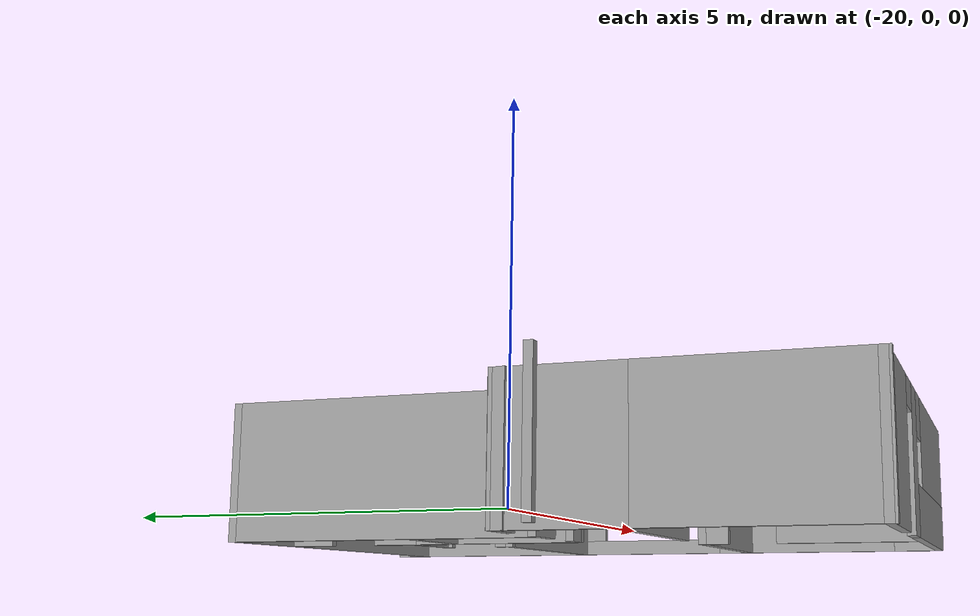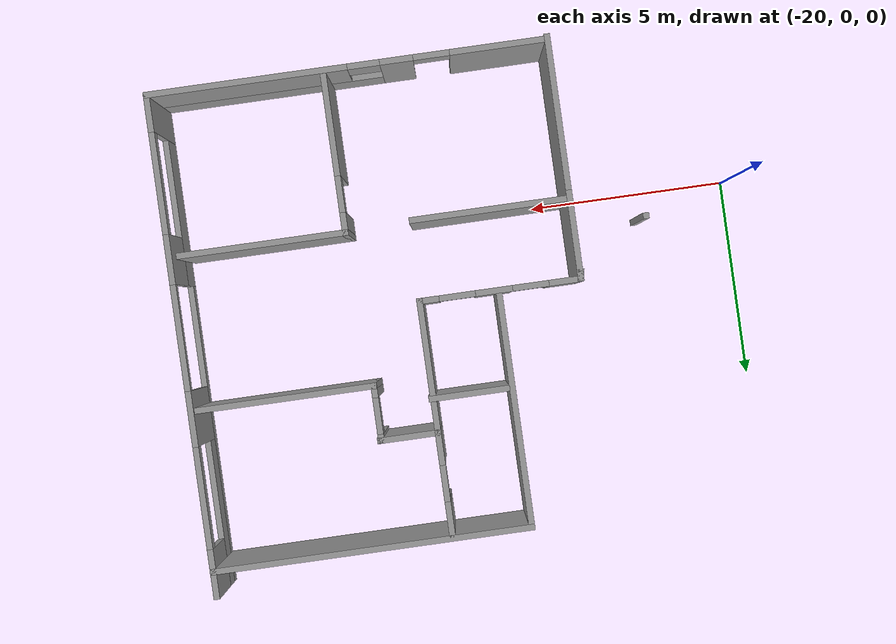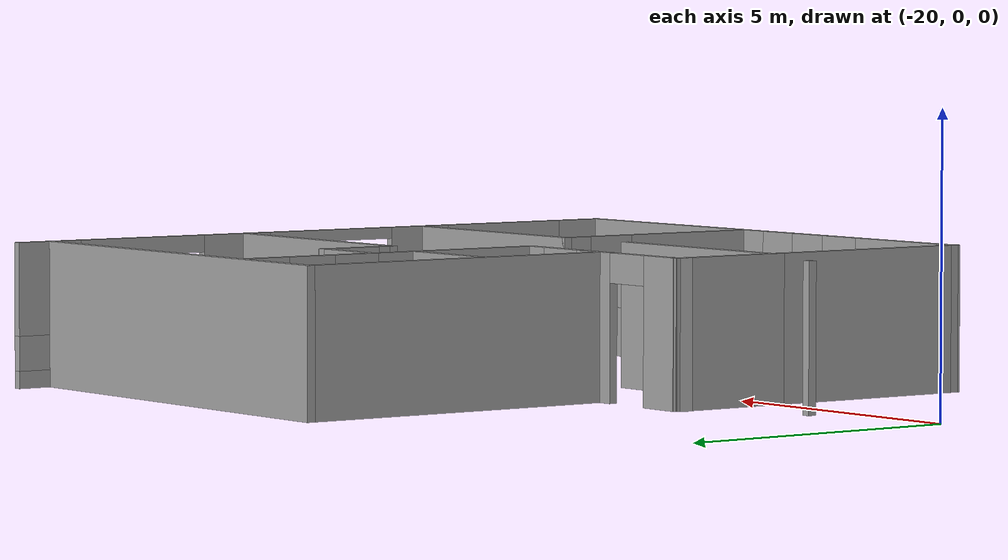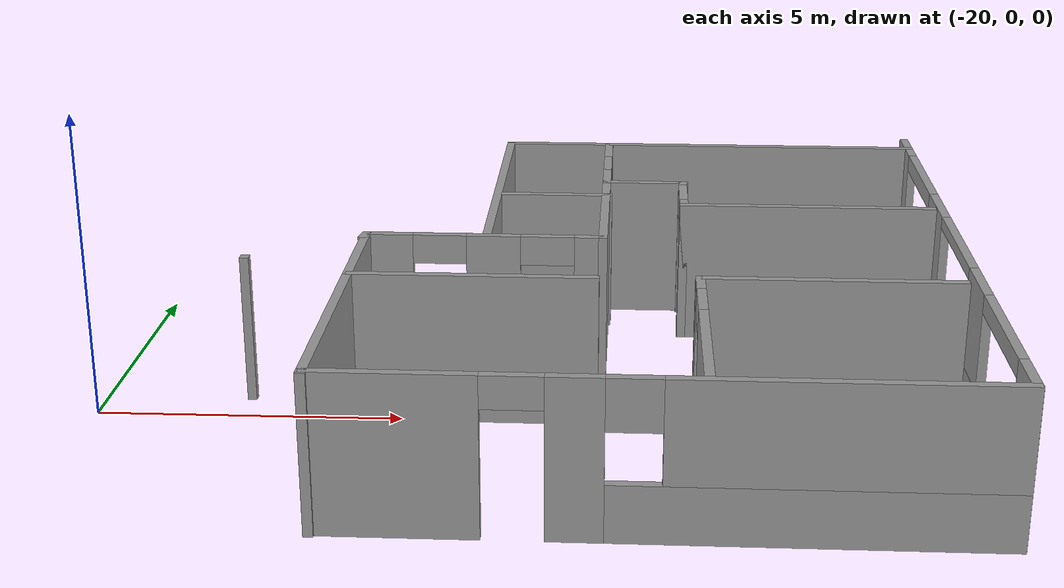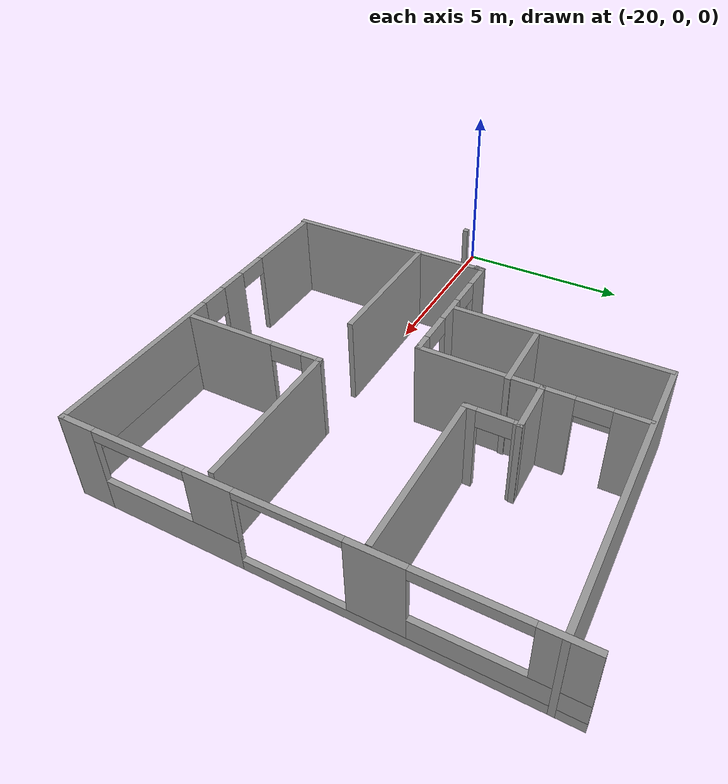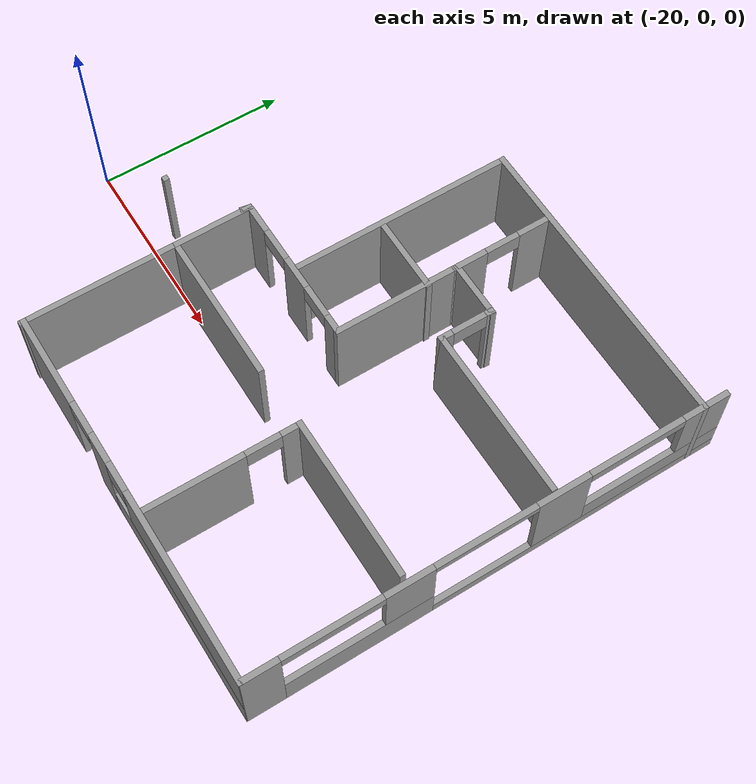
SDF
<?xml version='1.0'?>
<sdf version='1.6'>
  <model name='appartment'>
    <pose frame=''>-11.7502 2.24958 0 0 -0 0</pose>
    <link name='Wall_101'>
      <collision name='Wall_101_Collision'>
        <geometry>
          <box>
            <size>2 0.15 2.5</size>
          </box>
        </geometry>
        <pose frame=''>0 0 1.25 0 -0 0</pose>
      </collision>
      <visual name='Wall_101_Visual'>
        <pose frame=''>0 0 1.25 0 -0 0</pose>
        <geometry>
          <box>
            <size>2 0.15 2.5</size>
          </box>
        </geometry>
        <material>
          <script>
            <uri>file://media/materials/scripts/gazebo.material</uri>
            <name>Gazebo/Grey</name>
          </script>
          <ambient>1 1 1 1</ambient>
        </material>
        <meta>
          <layer>0</layer>
        </meta>
      </visual>
      <pose frame=''>-0.959711 2.15887 0 0 -0 0</pose>
    </link>
    <link name='Wall_103'>
      <collision name='Wall_103_Collision'>
        <geometry>
          <box>
            <size>2.25 0.15 2.5</size>
          </box>
        </geometry>
        <pose frame=''>0 0 1.25 0 -0 0</pose>
      </collision>
      <visual name='Wall_103_Visual'>
        <pose frame=''>0 0 1.25 0 -0 0</pose>
        <geometry>
          <box>
            <size>2.25 0.15 2.5</size>
          </box>
        </geometry>
        <material>
          <script>
            <uri>file://media/materials/scripts/gazebo.material</uri>
            <name>Gazebo/Grey</name>
          </script>
          <ambient>1 1 1 1</ambient>
        </material>
        <meta>
          <layer>0</layer>
        </meta>
      </visual>
      <pose frame=''>-4.05534 -1.30677 0 0 -0 1.5708</pose>
    </link>
    <link name='Wall_104'>
      <collision name='Wall_104_Collision'>
        <geometry>
          <box>
            <size>0.305575 0.15 2.5</size>
          </box>
        </geometry>
        <pose frame=''>0 0 1.25 0 -0 0</pose>
      </collision>
      <visual name='Wall_104_Visual'>
        <pose frame=''>0 0 1.25 0 -0 0</pose>
        <geometry>
          <box>
            <size>0.305575 0.15 2.5</size>
          </box>
        </geometry>
        <material>
          <script>
            <uri>file://media/materials/scripts/gazebo.material</uri>
            <name>Gazebo/Grey</name>
          </script>
          <ambient>1 1 1 1</ambient>
        </material>
        <meta>
          <layer>0</layer>
        </meta>
      </visual>
      <pose frame=''>-4.06828 -0.333478 0 0 0 -1.73794</pose>
    </link>
    <link name='Wall_55'>
      <collision name='Wall_55_Collision'>
        <geometry>
          <box>
            <size>0.15 0.15 2.5</size>
          </box>
        </geometry>
        <pose frame=''>0 0 1.25 0 -0 0</pose>
      </collision>
      <visual name='Wall_55_Visual'>
        <pose frame=''>0 0 1.25 0 -0 0</pose>
        <geometry>
          <box>
            <size>0.15 0.15 2.5</size>
          </box>
        </geometry>
        <material>
          <script>
            <uri>file://media/materials/scripts/gazebo.material</uri>
            <name>Gazebo/Grey</name>
          </script>
          <ambient>1 1 1 1</ambient>
        </material>
        <meta>
          <layer>0</layer>
        </meta>
      </visual>
      <pose frame=''>-5.84363 -1.5444 0 0 -0 0</pose>
    </link>
    <link name='Wall_61'>
      <pose frame=''>1.4899 -4.08314 0 0 0 -1.5708</pose>
      <visual name='Wall_61_Visual_0'>
        <pose frame=''>-1.71394 0 1.25 0 -0 0</pose>
        <geometry>
          <box>
            <size>0.572121 0.15 2.5</size>
          </box>
        </geometry>
        <material>
          <script>
            <uri>file://media/materials/scripts/gazebo.material</uri>
            <name>Gazebo/Grey</name>
          </script>
          <ambient>1 1 1 1</ambient>
        </material>
        <meta>
          <layer>0</layer>
        </meta>
      </visual>
      <collision name='Wall_61_Collision_0'>
        <geometry>
          <box>
            <size>0.572121 0.15 2.5</size>
          </box>
        </geometry>
        <pose frame=''>-1.71394 0 1.25 0 -0 0</pose>
      </collision>
      <visual name='Wall_61_Visual_1'>
        <pose frame=''>0.736061 0 1.25 0 -0 0</pose>
        <geometry>
          <box>
            <size>2.52788 0.15 2.5</size>
          </box>
        </geometry>
        <material>
          <script>
            <uri>file://media/materials/scripts/gazebo.material</uri>
            <name>Gazebo/Grey</name>
          </script>
          <ambient>1 1 1 1</ambient>
        </material>
        <meta>
          <layer>0</layer>
        </meta>
      </visual>
      <collision name='Wall_61_Collision_1'>
        <geometry>
          <box>
            <size>2.52788 0.15 2.5</size>
          </box>
        </geometry>
        <pose frame=''>0.736061 0 1.25 0 -0 0</pose>
      </collision>
      <visual name='Wall_61_Visual_2'>
        <pose frame=''>-0.977879 0 2.25 0 -0 0</pose>
        <geometry>
          <box>
            <size>0.9 0.15 0.5</size>
          </box>
        </geometry>
        <material>
          <script>
            <uri>file://media/materials/scripts/gazebo.material</uri>
            <name>Gazebo/Grey</name>
          </script>
          <ambient>1 1 1 1</ambient>
        </material>
        <meta>
          <layer>0</layer>
        </meta>
      </visual>
      <collision name='Wall_61_Collision_2'>
        <geometry>
          <box>
            <size>0.9 0.15 0.5</size>
          </box>
        </geometry>
        <pose frame=''>-0.977879 0 2.25 0 -0 0</pose>
      </collision>
    </link>
    <link name='Wall_63'>
      <pose frame=''>5.84227 0.031774 0 0 -0 1.5708</pose>
      <visual name='Wall_63_Visual_0'>
        <pose frame=''>-5.76203 0 1.25 0 -0 0</pose>
        <geometry>
          <box>
            <size>0.975943 0.15 2.5</size>
          </box>
        </geometry>
        <material>
          <script>
            <uri>file://media/materials/scripts/gazebo.material</uri>
            <name>Gazebo/Grey</name>
          </script>
          <ambient>1 1 1 1</ambient>
        </material>
        <meta>
          <layer>0</layer>
        </meta>
      </visual>
      <collision name='Wall_63_Collision_0'>
        <geometry>
          <box>
            <size>0.975943 0.15 2.5</size>
          </box>
        </geometry>
        <pose frame=''>-5.76203 0 1.25 0 -0 0</pose>
      </collision>
      <visual name='Wall_63_Visual_1'>
        <pose frame=''>-3.39353 0 0.45 0 -0 0</pose>
        <geometry>
          <box>
            <size>3.76105 0.15 0.9</size>
          </box>
        </geometry>
        <material>
          <script>
            <uri>file://media/materials/scripts/gazebo.material</uri>
            <name>Gazebo/Grey</name>
          </script>
          <ambient>1 1 1 1</ambient>
        </material>
        <meta>
          <layer>0</layer>
        </meta>
      </visual>
      <collision name='Wall_63_Collision_1'>
        <geometry>
          <box>
            <size>3.76105 0.15 0.9</size>
          </box>
        </geometry>
        <pose frame=''>-3.39353 0 0.45 0 -0 0</pose>
      </collision>
      <visual name='Wall_63_Visual_2'>
        <pose frame=''>2.3685 0 0.15 0 -0 0</pose>
        <geometry>
          <box>
            <size>7.763 0.15 0.3</size>
          </box>
        </geometry>
        <material>
          <script>
            <uri>file://media/materials/scripts/gazebo.material</uri>
            <name>Gazebo/Grey</name>
          </script>
          <ambient>1 1 1 1</ambient>
        </material>
        <meta>
          <layer>0</layer>
        </meta>
      </visual>
      <collision name='Wall_63_Collision_2'>
        <geometry>
          <box>
            <size>7.763 0.15 0.3</size>
          </box>
        </geometry>
        <pose frame=''>2.3685 0 0.15 0 -0 0</pose>
      </collision>
      <visual name='Wall_63_Visual_3'>
        <pose frame=''>1.80513 0 1.4 0 -0 0</pose>
        <geometry>
          <box>
            <size>1.38062 0.15 2.2</size>
          </box>
        </geometry>
        <material>
          <script>
            <uri>file://media/materials/scripts/gazebo.material</uri>
            <name>Gazebo/Grey</name>
          </script>
          <ambient>1 1 1 1</ambient>
        </material>
        <meta>
          <layer>0</layer>
        </meta>
      </visual>
      <collision name='Wall_63_Collision_3'>
        <geometry>
          <box>
            <size>1.38062 0.15 2.2</size>
          </box>
        </geometry>
        <pose frame=''>1.80513 0 1.4 0 -0 0</pose>
      </collision>
      <visual name='Wall_63_Visual_4'>
        <pose frame=''>4.37272 0 0.6 0 -0 0</pose>
        <geometry>
          <box>
            <size>3.75456 0.15 0.6</size>
          </box>
        </geometry>
        <material>
          <script>
            <uri>file://media/materials/scripts/gazebo.material</uri>
            <name>Gazebo/Grey</name>
          </script>
          <ambient>1 1 1 1</ambient>
        </material>
        <meta>
          <layer>0</layer>
        </meta>
      </visual>
      <collision name='Wall_63_Collision_4'>
        <geometry>
          <box>
            <size>3.75456 0.15 0.6</size>
          </box>
        </geometry>
        <pose frame=''>4.37272 0 0.6 0 -0 0</pose>
      </collision>
      <visual name='Wall_63_Visual_5'>
        <pose frame=''>-2.13353 0 1.7 0 -0 0</pose>
        <geometry>
          <box>
            <size>1.24105 0.15 1.6</size>
          </box>
        </geometry>
        <material>
          <script>
            <uri>file://media/materials/scripts/gazebo.material</uri>
            <name>Gazebo/Grey</name>
          </script>
          <ambient>1 1 1 1</ambient>
        </material>
        <meta>
          <layer>0</layer>
        </meta>
      </visual>
      <collision name='Wall_63_Collision_5'>
        <geometry>
          <box>
            <size>1.24105 0.15 1.6</size>
          </box>
        </geometry>
        <pose frame=''>-2.13353 0 1.7 0 -0 0</pose>
      </collision>
      <visual name='Wall_63_Visual_6'>
        <pose frame=''>-2.13353 0 1.7 0 -0 0</pose>
        <geometry>
          <box>
            <size>1.24105 0.15 1.6</size>
          </box>
        </geometry>
        <material>
          <script>
            <uri>file://media/materials/scripts/gazebo.material</uri>
            <name>Gazebo/Grey</name>
          </script>
          <ambient>1 1 1 1</ambient>
        </material>
        <meta>
          <layer>0</layer>
        </meta>
      </visual>
      <collision name='Wall_63_Collision_6'>
        <geometry>
          <box>
            <size>1.24105 0.15 1.6</size>
          </box>
        </geometry>
        <pose frame=''>-2.13353 0 1.7 0 -0 0</pose>
      </collision>
      <visual name='Wall_63_Visual_7'>
        <pose frame=''>5.63272 0 1.7 0 -0 0</pose>
        <geometry>
          <box>
            <size>1.23456 0.15 1.6</size>
          </box>
        </geometry>
        <material>
          <script>
            <uri>file://media/materials/scripts/gazebo.material</uri>
            <name>Gazebo/Grey</name>
          </script>
          <ambient>1 1 1 1</ambient>
        </material>
        <meta>
          <layer>0</layer>
        </meta>
      </visual>
      <collision name='Wall_63_Collision_7'>
        <geometry>
          <box>
            <size>1.23456 0.15 1.6</size>
          </box>
        </geometry>
        <pose frame=''>5.63272 0 1.7 0 -0 0</pose>
      </collision>
      <visual name='Wall_63_Visual_8'>
        <pose frame=''>-4.01406 0 2.35 0 -0 0</pose>
        <geometry>
          <box>
            <size>2.52 0.15 0.3</size>
          </box>
        </geometry>
        <material>
          <script>
            <uri>file://media/materials/scripts/gazebo.material</uri>
            <name>Gazebo/Grey</name>
          </script>
          <ambient>1 1 1 1</ambient>
        </material>
        <meta>
          <layer>0</layer>
        </meta>
      </visual>
      <collision name='Wall_63_Collision_8'>
        <geometry>
          <box>
            <size>2.52 0.15 0.3</size>
          </box>
        </geometry>
        <pose frame=''>-4.01406 0 2.35 0 -0 0</pose>
      </collision>
      <visual name='Wall_63_Visual_9'>
        <pose frame=''>3.75544 0 2.35 0 -0 0</pose>
        <geometry>
          <box>
            <size>2.52 0.15 0.3</size>
          </box>
        </geometry>
        <material>
          <script>
            <uri>file://media/materials/scripts/gazebo.material</uri>
            <name>Gazebo/Grey</name>
          </script>
          <ambient>1 1 1 1</ambient>
        </material>
        <meta>
          <layer>0</layer>
        </meta>
      </visual>
      <collision name='Wall_63_Collision_9'>
        <geometry>
          <box>
            <size>2.52 0.15 0.3</size>
          </box>
        </geometry>
        <pose frame=''>3.75544 0 2.35 0 -0 0</pose>
      </collision>
      <visual name='Wall_63_Visual_10'>
        <pose frame=''>-0.199096 0 2.4 0 -0 0</pose>
        <geometry>
          <box>
            <size>2.62782 0.15 0.2</size>
          </box>
        </geometry>
        <material>
          <script>
            <uri>file://media/materials/scripts/gazebo.material</uri>
            <name>Gazebo/Grey</name>
          </script>
          <ambient>1 1 1 1</ambient>
        </material>
        <meta>
          <layer>0</layer>
        </meta>
      </visual>
      <collision name='Wall_63_Collision_10'>
        <geometry>
          <box>
            <size>2.62782 0.15 0.2</size>
          </box>
        </geometry>
        <pose frame=''>-0.199096 0 2.4 0 -0 0</pose>
      </collision>
      <visual name='Wall_63_Visual_11'>
        <pose frame=''>-0.199096 0 2.4 0 -0 0</pose>
        <geometry>
          <box>
            <size>2.62782 0.15 0.2</size>
          </box>
        </geometry>
        <material>
          <script>
            <uri>file://media/materials/scripts/gazebo.material</uri>
            <name>Gazebo/Grey</name>
          </script>
          <ambient>1 1 1 1</ambient>
        </material>
        <meta>
          <layer>0</layer>
        </meta>
      </visual>
      <collision name='Wall_63_Collision_11'>
        <geometry>
          <box>
            <size>2.62782 0.15 0.2</size>
          </box>
        </geometry>
        <pose frame=''>-0.199096 0 2.4 0 -0 0</pose>
      </collision>
    </link>
    <link name='Wall_66'>
      <collision name='Wall_66_Collision'>
        <geometry>
          <box>
            <size>4.25 0.15 2.5</size>
          </box>
        </geometry>
        <pose frame=''>0 0 1.25 0 -0 0</pose>
      </collision>
      <visual name='Wall_66_Visual'>
        <pose frame=''>0 0 1.25 0 -0 0</pose>
        <geometry>
          <box>
            <size>4.25 0.15 2.5</size>
          </box>
        </geometry>
        <material>
          <script>
            <uri>file://media/materials/scripts/gazebo.material</uri>
            <name>Gazebo/Grey</name>
          </script>
          <ambient>1 1 1 1</ambient>
        </material>
        <meta>
          <layer>0</layer>
        </meta>
      </visual>
      <pose frame=''>3.5399 -2.15814 0 0 -0 0</pose>
    </link>
    <link name='Wall_70'>
      <collision name='Wall_70_Collision'>
        <geometry>
          <box>
            <size>4 0.15 2.5</size>
          </box>
        </geometry>
        <pose frame=''>0 0 1.25 0 -0 0</pose>
      </collision>
      <visual name='Wall_70_Visual'>
        <pose frame=''>0 0 1.25 0 -0 0</pose>
        <geometry>
          <box>
            <size>4 0.15 2.5</size>
          </box>
        </geometry>
        <material>
          <script>
            <uri>file://media/materials/scripts/gazebo.material</uri>
            <name>Gazebo/Grey</name>
          </script>
          <ambient>1 1 1 1</ambient>
        </material>
        <meta>
          <layer>0</layer>
        </meta>
      </visual>
      <pose frame=''>-2.08943 -2.22934 0 0 -0 0</pose>
    </link>
    <link name='Wall_72'>
      <collision name='Wall_72_Collision'>
        <geometry>
          <box>
            <size>4 0.15 2.5</size>
          </box>
        </geometry>
        <pose frame=''>0 0 1.25 0 -0 0</pose>
      </collision>
      <visual name='Wall_72_Visual'>
        <pose frame=''>0 0 1.25 0 -0 0</pose>
        <geometry>
          <box>
            <size>4 0.15 2.5</size>
          </box>
        </geometry>
        <material>
          <script>
            <uri>file://media/materials/scripts/gazebo.material</uri>
            <name>Gazebo/Grey</name>
          </script>
          <ambient>1 1 1 1</ambient>
        </material>
        <meta>
          <layer>0</layer>
        </meta>
      </visual>
      <pose frame=''>-4.05534 -4.28177 0 0 0 -1.5708</pose>
    </link>
    <link name='Wall_74'>
      <pose frame=''>0.890118 -6.16025 0 0 -0 0</pose>
      <visual name='Wall_74_Visual_0'>
        <pose frame=''>-3.77374 0 1.25 0 -0 0</pose>
        <geometry>
          <box>
            <size>2.49354 0.15 2.5</size>
          </box>
        </geometry>
        <material>
          <script>
            <uri>file://media/materials/scripts/gazebo.material</uri>
            <name>Gazebo/Grey</name>
          </script>
          <ambient>1 1 1 1</ambient>
        </material>
        <meta>
          <layer>0</layer>
        </meta>
      </visual>
      <collision name='Wall_74_Collision_0'>
        <geometry>
          <box>
            <size>2.49354 0.15 2.5</size>
          </box>
        </geometry>
        <pose frame=''>-3.77374 0 1.25 0 -0 0</pose>
      </collision>
      <visual name='Wall_74_Visual_1'>
        <pose frame=''>-1.21454 0 1.25 0 -0 0</pose>
        <geometry>
          <box>
            <size>0.824861 0.15 2.5</size>
          </box>
        </geometry>
        <material>
          <script>
            <uri>file://media/materials/scripts/gazebo.material</uri>
            <name>Gazebo/Grey</name>
          </script>
          <ambient>1 1 1 1</ambient>
        </material>
        <meta>
          <layer>0</layer>
        </meta>
      </visual>
      <collision name='Wall_74_Collision_1'>
        <geometry>
          <box>
            <size>0.824861 0.15 2.5</size>
          </box>
        </geometry>
        <pose frame=''>-1.21454 0 1.25 0 -0 0</pose>
      </collision>
      <visual name='Wall_74_Visual_2'>
        <pose frame=''>2.1092 0 0.45 0 -0 0</pose>
        <geometry>
          <box>
            <size>5.82262 0.15 0.9</size>
          </box>
        </geometry>
        <material>
          <script>
            <uri>file://media/materials/scripts/gazebo.material</uri>
            <name>Gazebo/Grey</name>
          </script>
          <ambient>1 1 1 1</ambient>
        </material>
        <meta>
          <layer>0</layer>
        </meta>
      </visual>
      <collision name='Wall_74_Collision_2'>
        <geometry>
          <box>
            <size>5.82262 0.15 0.9</size>
          </box>
        </geometry>
        <pose frame=''>2.1092 0 0.45 0 -0 0</pose>
      </collision>
      <visual name='Wall_74_Visual_3'>
        <pose frame=''>2.5092 0 1.7 0 -0 0</pose>
        <geometry>
          <box>
            <size>5.02262 0.15 1.6</size>
          </box>
        </geometry>
        <material>
          <script>
            <uri>file://media/materials/scripts/gazebo.material</uri>
            <name>Gazebo/Grey</name>
          </script>
          <ambient>1 1 1 1</ambient>
        </material>
        <meta>
          <layer>0</layer>
        </meta>
      </visual>
      <collision name='Wall_74_Collision_3'>
        <geometry>
          <box>
            <size>5.02262 0.15 1.6</size>
          </box>
        </geometry>
        <pose frame=''>2.5092 0 1.7 0 -0 0</pose>
      </collision>
      <visual name='Wall_74_Visual_4'>
        <pose frame=''>-0.40211 0 2.1 0 -0 0</pose>
        <geometry>
          <box>
            <size>0.8 0.15 0.8</size>
          </box>
        </geometry>
        <material>
          <script>
            <uri>file://media/materials/scripts/gazebo.material</uri>
            <name>Gazebo/Grey</name>
          </script>
          <ambient>1 1 1 1</ambient>
        </material>
        <meta>
          <layer>0</layer>
        </meta>
      </visual>
      <collision name='Wall_74_Collision_4'>
        <geometry>
          <box>
            <size>0.8 0.15 0.8</size>
          </box>
        </geometry>
        <pose frame=''>-0.40211 0 2.1 0 -0 0</pose>
      </collision>
      <visual name='Wall_74_Visual_5'>
        <pose frame=''>-2.07697 0 2.25 0 -0 0</pose>
        <geometry>
          <box>
            <size>0.9 0.15 0.5</size>
          </box>
        </geometry>
        <material>
          <script>
            <uri>file://media/materials/scripts/gazebo.material</uri>
            <name>Gazebo/Grey</name>
          </script>
          <ambient>1 1 1 1</ambient>
        </material>
        <meta>
          <layer>0</layer>
        </meta>
      </visual>
      <collision name='Wall_74_Collision_5'>
        <geometry>
          <box>
            <size>0.9 0.15 0.5</size>
          </box>
        </geometry>
        <pose frame=''>-2.07697 0 2.25 0 -0 0</pose>
      </collision>
    </link>
    <link name='Wall_76'>
      <pose frame=''>-2.04291 -0.240947 0 0 -0 0</pose>
      <visual name='Wall_76_Visual_0'>
        <pose frame=''>-1.61114 0 1.25 0 -0 0</pose>
        <geometry>
          <box>
            <size>0.777715 0.15 2.5</size>
          </box>
        </geometry>
        <material>
          <script>
            <uri>file://media/materials/scripts/gazebo.material</uri>
            <name>Gazebo/Grey</name>
          </script>
          <ambient>1 1 1 1</ambient>
        </material>
        <meta>
          <layer>0</layer>
        </meta>
      </visual>
      <collision name='Wall_76_Collision_0'>
        <geometry>
          <box>
            <size>0.777715 0.15 2.5</size>
          </box>
        </geometry>
        <pose frame=''>-1.61114 0 1.25 0 -0 0</pose>
      </collision>
      <visual name='Wall_76_Visual_1'>
        <pose frame=''>0.134932 0 1.25 0 -0 0</pose>
        <geometry>
          <box>
            <size>0.914432 0.15 2.5</size>
          </box>
        </geometry>
        <material>
          <script>
            <uri>file://media/materials/scripts/gazebo.material</uri>
            <name>Gazebo/Grey</name>
          </script>
          <ambient>1 1 1 1</ambient>
        </material>
        <meta>
          <layer>0</layer>
        </meta>
      </visual>
      <collision name='Wall_76_Collision_1'>
        <geometry>
          <box>
            <size>0.914432 0.15 2.5</size>
          </box>
        </geometry>
        <pose frame=''>0.134932 0 1.25 0 -0 0</pose>
      </collision>
      <visual name='Wall_76_Visual_2'>
        <pose frame=''>1.74607 0 1.25 0 -0 0</pose>
        <geometry>
          <box>
            <size>0.507852 0.15 2.5</size>
          </box>
        </geometry>
        <material>
          <script>
            <uri>file://media/materials/scripts/gazebo.material</uri>
            <name>Gazebo/Grey</name>
          </script>
          <ambient>1 1 1 1</ambient>
        </material>
        <meta>
          <layer>0</layer>
        </meta>
      </visual>
      <collision name='Wall_76_Collision_2'>
        <geometry>
          <box>
            <size>0.507852 0.15 2.5</size>
          </box>
        </geometry>
        <pose frame=''>1.74607 0 1.25 0 -0 0</pose>
      </collision>
      <visual name='Wall_76_Visual_3'>
        <pose frame=''>-0.772285 0 2.25 0 -0 0</pose>
        <geometry>
          <box>
            <size>0.9 0.15 0.5</size>
          </box>
        </geometry>
        <material>
          <script>
            <uri>file://media/materials/scripts/gazebo.material</uri>
            <name>Gazebo/Grey</name>
          </script>
          <ambient>1 1 1 1</ambient>
        </material>
        <meta>
          <layer>0</layer>
        </meta>
      </visual>
      <collision name='Wall_76_Collision_3'>
        <geometry>
          <box>
            <size>0.9 0.15 0.5</size>
          </box>
        </geometry>
        <pose frame=''>-0.772285 0 2.25 0 -0 0</pose>
      </collision>
      <visual name='Wall_76_Visual_4'>
        <pose frame=''>1.04215 0 2.25 0 -0 0</pose>
        <geometry>
          <box>
            <size>0.9 0.15 0.5</size>
          </box>
        </geometry>
        <material>
          <script>
            <uri>file://media/materials/scripts/gazebo.material</uri>
            <name>Gazebo/Grey</name>
          </script>
          <ambient>1 1 1 1</ambient>
        </material>
        <meta>
          <layer>0</layer>
        </meta>
      </visual>
      <collision name='Wall_76_Collision_4'>
        <geometry>
          <box>
            <size>0.9 0.15 0.5</size>
          </box>
        </geometry>
        <pose frame=''>1.04215 0 2.25 0 -0 0</pose>
      </collision>
    </link>
    <link name='Wall_80'>
      <collision name='Wall_80_Collision'>
        <geometry>
          <box>
            <size>3.25 0.15 2.5</size>
          </box>
        </geometry>
        <pose frame=''>0 0 1.25 0 -0 0</pose>
      </collision>
      <visual name='Wall_80_Visual'>
        <pose frame=''>0 0 1.25 0 -0 0</pose>
        <geometry>
          <box>
            <size>3.25 0.15 2.5</size>
          </box>
        </geometry>
        <material>
          <script>
            <uri>file://media/materials/scripts/gazebo.material</uri>
            <name>Gazebo/Grey</name>
          </script>
          <ambient>1 1 1 1</ambient>
        </material>
        <meta>
          <layer>0</layer>
        </meta>
      </visual>
      <pose frame=''>-0.071381 1.30905 0 0 -0 1.5708</pose>
    </link>
    <link name='Wall_82'>
      <collision name='Wall_82_Collision'>
        <geometry>
          <box>
            <size>8.01791 0.15 2.5</size>
          </box>
        </geometry>
        <pose frame=''>0 0 1.25 0 -0 0</pose>
      </collision>
      <visual name='Wall_82_Visual'>
        <pose frame=''>0 0 1.25 0 -0 0</pose>
        <geometry>
          <box>
            <size>8.01791 0.15 2.5</size>
          </box>
        </geometry>
        <material>
          <script>
            <uri>file://media/materials/scripts/gazebo.material</uri>
            <name>Gazebo/Grey</name>
          </script>
          <ambient>1 1 1 1</ambient>
        </material>
        <meta>
          <layer>0</layer>
        </meta>
      </visual>
      <pose frame=''>1.90967 5.60164 0 0 -0 0</pose>
    </link>
    <link name='Wall_84'>
      <collision name='Wall_84_Collision'>
        <geometry>
          <box>
            <size>5.80214 0.15 2.5</size>
          </box>
        </geometry>
        <pose frame=''>0 0 1.25 0 -0 0</pose>
      </collision>
      <visual name='Wall_84_Visual'>
        <pose frame=''>0 0 1.25 0 -0 0</pose>
        <geometry>
          <box>
            <size>5.80214 0.15 2.5</size>
          </box>
        </geometry>
        <material>
          <script>
            <uri>file://media/materials/scripts/gazebo.material</uri>
            <name>Gazebo/Grey</name>
          </script>
          <ambient>1 1 1 1</ambient>
        </material>
        <meta>
          <layer>0</layer>
        </meta>
      </visual>
      <pose frame=''>-2.02428 2.72905 0 0 0 -1.5708</pose>
    </link>
    <link name='Wall_86'>
      <pose frame=''>-0.070278 4.2495 0 0 0 -1.5708</pose>
      <visual name='Wall_86_Visual_0'>
        <pose frame=''>-0.913974 0 1.25 0 -0 0</pose>
        <geometry>
          <box>
            <size>0.922052 0.15 2.5</size>
          </box>
        </geometry>
        <material>
          <script>
            <uri>file://media/materials/scripts/gazebo.material</uri>
            <name>Gazebo/Grey</name>
          </script>
          <ambient>1 1 1 1</ambient>
        </material>
        <meta>
          <layer>0</layer>
        </meta>
      </visual>
      <collision name='Wall_86_Collision_0'>
        <geometry>
          <box>
            <size>0.922052 0.15 2.5</size>
          </box>
        </geometry>
        <pose frame=''>-0.913974 0 1.25 0 -0 0</pose>
      </collision>
      <visual name='Wall_86_Visual_1'>
        <pose frame=''>0.911026 0 1.25 0 -0 0</pose>
        <geometry>
          <box>
            <size>0.927948 0.15 2.5</size>
          </box>
        </geometry>
        <material>
          <script>
            <uri>file://media/materials/scripts/gazebo.material</uri>
            <name>Gazebo/Grey</name>
          </script>
          <ambient>1 1 1 1</ambient>
        </material>
        <meta>
          <layer>0</layer>
        </meta>
      </visual>
      <collision name='Wall_86_Collision_1'>
        <geometry>
          <box>
            <size>0.927948 0.15 2.5</size>
          </box>
        </geometry>
        <pose frame=''>0.911026 0 1.25 0 -0 0</pose>
      </collision>
      <visual name='Wall_86_Visual_2'>
        <pose frame=''>-0.002948 0 2.25 0 -0 0</pose>
        <geometry>
          <box>
            <size>0.9 0.15 0.5</size>
          </box>
        </geometry>
        <material>
          <script>
            <uri>file://media/materials/scripts/gazebo.material</uri>
            <name>Gazebo/Grey</name>
          </script>
          <ambient>1 1 1 1</ambient>
        </material>
        <meta>
          <layer>0</layer>
        </meta>
      </visual>
      <collision name='Wall_86_Collision_2'>
        <geometry>
          <box>
            <size>0.9 0.15 0.5</size>
          </box>
        </geometry>
        <pose frame=''>-0.002948 0 2.25 0 -0 0</pose>
      </collision>
    </link>
    <link name='Wall_91'>
      <collision name='Wall_91_Collision'>
        <geometry>
          <box>
            <size>4.5 0.15 2.5</size>
          </box>
        </geometry>
        <pose frame=''>0 0 1.25 0 -0 0</pose>
      </collision>
      <visual name='Wall_91_Visual'>
        <pose frame=''>0 0 1.25 0 -0 0</pose>
        <geometry>
          <box>
            <size>4.5 0.15 2.5</size>
          </box>
        </geometry>
        <material>
          <script>
            <uri>file://media/materials/scripts/gazebo.material</uri>
            <name>Gazebo/Grey</name>
          </script>
          <ambient>1 1 1 1</ambient>
        </material>
        <meta>
          <layer>0</layer>
        </meta>
      </visual>
      <pose frame=''>3.50044 1.64711 0 0 -0 0</pose>
    </link>
    <link name='Wall_95'>
      <collision name='Wall_95_Collision'>
        <geometry>
          <box>
            <size>1.5 0.15 2.5</size>
          </box>
        </geometry>
        <pose frame=''>0 0 1.25 0 -0 0</pose>
      </collision>
      <visual name='Wall_95_Visual'>
        <pose frame=''>0 0 1.25 0 -0 0</pose>
        <geometry>
          <box>
            <size>1.5 0.15 2.5</size>
          </box>
        </geometry>
        <material>
          <script>
            <uri>file://media/materials/scripts/gazebo.material</uri>
            <name>Gazebo/Grey</name>
          </script>
          <ambient>1 1 1 1</ambient>
        </material>
        <meta>
          <layer>0</layer>
        </meta>
      </visual>
      <pose frame=''>0.615956 2.9963 0 0 -0 0</pose>
    </link>
    <link name='Wall_96'>
      <collision name='Wall_96_Collision'>
        <geometry>
          <box>
            <size>0.16 0.15 2.5</size>
          </box>
        </geometry>
        <pose frame=''>0 0 1.25 0 -0 0</pose>
      </collision>
      <visual name='Wall_96_Visual'>
        <pose frame=''>0 0 1.25 0 -0 0</pose>
        <geometry>
          <box>
            <size>0.16 0.15 2.5</size>
          </box>
        </geometry>
        <material>
          <script>
            <uri>file://media/materials/scripts/gazebo.material</uri>
            <name>Gazebo/Grey</name>
          </script>
          <ambient>1 1 1 1</ambient>
        </material>
        <meta>
          <layer>0</layer>
        </meta>
      </visual>
      <pose frame=''>1.34248 2.9963 0 0 -0 0</pose>
    </link>
    <link name='Wall_99'>
      <pose frame=''>1.32544 2.32211 0 0 -0 1.5708</pose>
      <visual name='Wall_99_Visual_0'>
        <pose frame=''>-0.565309 0 1.25 0 -0 0</pose>
        <geometry>
          <box>
            <size>0.369382 0.15 2.5</size>
          </box>
        </geometry>
        <material>
          <script>
            <uri>file://media/materials/scripts/gazebo.material</uri>
            <name>Gazebo/Grey</name>
          </script>
          <ambient>1 1 1 1</ambient>
        </material>
        <meta>
          <layer>0</layer>
        </meta>
      </visual>
      <collision name='Wall_99_Collision_0'>
        <geometry>
          <box>
            <size>0.369382 0.15 2.5</size>
          </box>
        </geometry>
        <pose frame=''>-0.565309 0 1.25 0 -0 0</pose>
      </collision>
      <visual name='Wall_99_Visual_1'>
        <pose frame=''>0.634691 0 1.25 0 -0 0</pose>
        <geometry>
          <box>
            <size>0.230618 0.15 2.5</size>
          </box>
        </geometry>
        <material>
          <script>
            <uri>file://media/materials/scripts/gazebo.material</uri>
            <name>Gazebo/Grey</name>
          </script>
          <ambient>1 1 1 1</ambient>
        </material>
        <meta>
          <layer>0</layer>
        </meta>
      </visual>
      <collision name='Wall_99_Collision_1'>
        <geometry>
          <box>
            <size>0.230618 0.15 2.5</size>
          </box>
        </geometry>
        <pose frame=''>0.634691 0 1.25 0 -0 0</pose>
      </collision>
      <visual name='Wall_99_Visual_2'>
        <pose frame=''>0.069382 0 2.25 0 -0 0</pose>
        <geometry>
          <box>
            <size>0.9 0.15 0.5</size>
          </box>
        </geometry>
        <material>
          <script>
            <uri>file://media/materials/scripts/gazebo.material</uri>
            <name>Gazebo/Grey</name>
          </script>
          <ambient>1 1 1 1</ambient>
        </material>
        <meta>
          <layer>0</layer>
        </meta>
      </visual>
      <collision name='Wall_99_Collision_2'>
        <geometry>
          <box>
            <size>0.9 0.15 0.5</size>
          </box>
        </geometry>
        <pose frame=''>0.069382 0 2.25 0 -0 0</pose>
      </collision>
    </link>
    <static>1</static>
  </model>
</sdf>
